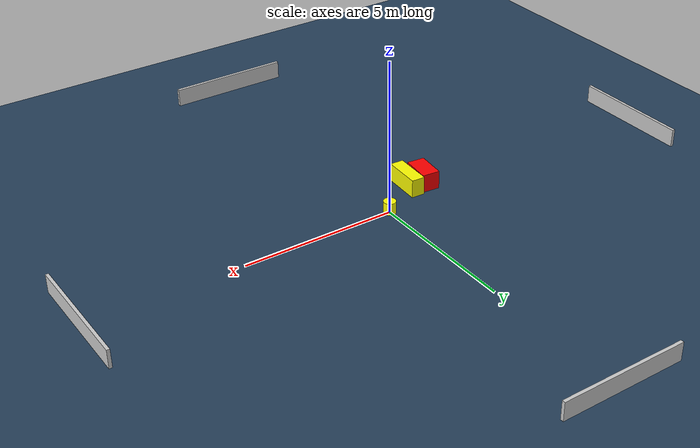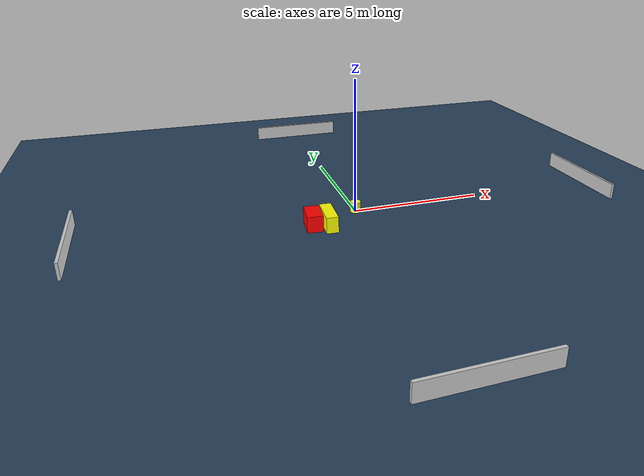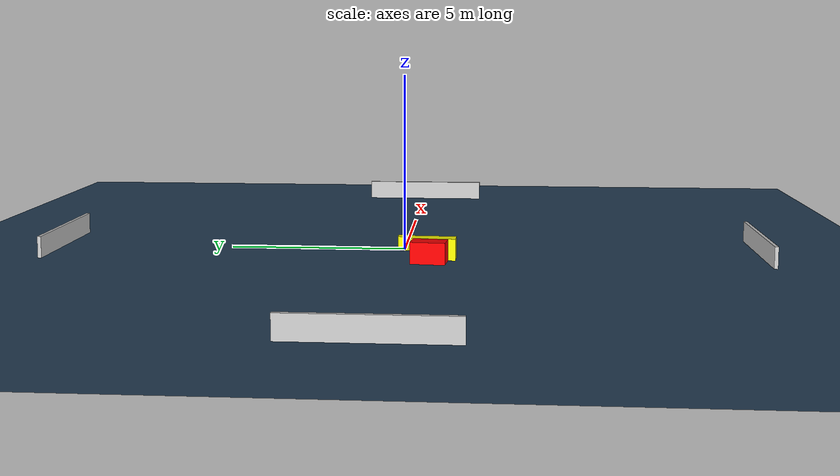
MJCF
<?xml version="1.0" ?>
<mujoco model="generated_environment">
  <option timestep="0.01" integrator="RK4" cone="elliptic"/>
  <default>
    <geom density="1"/>
  </default>
  <asset>
    <texture builtin="gradient" height="3072" name="skybox" rgb1="0.3 0.5 0.7" rgb2="0 0 0" type="skybox" width="512"/>
    <texture builtin="checker" height="300" name="groundplane" rgb1="0.2 0.3 0.4" rgb2="0.1 0.2 0.3" type="2d" width="300"/>
    <material name="groundplane" reflectance="0.2" texrepeat="5 5" texture="groundplane"/>
  </asset>
  <worldbody>
    <light dir="0 0 -1" directional="true" pos="0 0 1.5"/>
    <geom condim="3" friction="0.5 0.005 0.001" material="groundplane" name="floor" pos="0 0 0" size="0 0 0.05" type="plane"/>
    <body name="walls">
      <geom name="wall_1" condim="4" pos="-10.0 0.0 0.3" rgba="0.800000011920929 0.800000011920929 0.800000011920929 1.0" size="0.05 2.0 0.3" type="box"/>
      <geom name="wall_2" condim="4" pos="10.0 0.0 0.3" rgba="0.800000011920929 0.800000011920929 0.800000011920929 1.0" size="0.05 2.0 0.3" type="box"/>
      <geom name="wall_3" condim="4" pos="0.0 -10.0 0.3" rgba="0.800000011920929 0.800000011920929 0.800000011920929 1.0" size="2.0 0.05 0.3" type="box"/>
      <geom name="wall_4" condim="4" pos="0.0 10.0 0.3" rgba="0.800000011920929 0.800000011920929 0.800000011920929 1.0" size="2.0 0.05 0.3" type="box"/>
    </body>
    <body name="robot">
      <joint name="joint_x" type="slide" pos="0 0 0" axis="1 0 0"/>
      <joint name="joint_y" type="slide" pos="0 0 0" axis="0 1 0"/>
      <geom name="robot" type="cylinder" pos="0.0 0.0 0.2" size="0.2 0.2 0.0" mass="5.0" friction="1.0 0.005 0.0001" condim="4" rgba="1.0 1.0 0.0 1.0"/>
    </body>
    <body name="obstacle_1_movable">
      <geom name="obstacle_1_movable" condim="4" pos="-1.2956603974974386 -0.8920953270453799 0.3" euler="0 0 357.30896037098995" friction="0.0 0.005 0.001" rgba="1.0 1.0 0.0 1.0" size="0.21851594005075897 0.6172430855327765 0.3" type="box" mass="0.1"/>
      <joint type="free"/>
    </body>
    <body name="obstacle_2_static">
      <geom name="obstacle_2_static" condim="4" pos="-1.8357184850295802 -0.7932142351454556 0.3" euler="0 0 174.28624448436472" friction="0.0 0.005 0.001" rgba="1.0 0.0 0.0 1.0" size="0.2899143763757109 0.47846357094673014 0.3" type="box"/>
    </body>
  </worldbody>
  <actuator>
    <motor name="actuator_x" joint="joint_x" gear="1" ctrlrange="-1 1"/>
    <motor name="actuator_y" joint="joint_y" gear="1" ctrlrange="-1 1"/>
  </actuator>
</mujoco>
